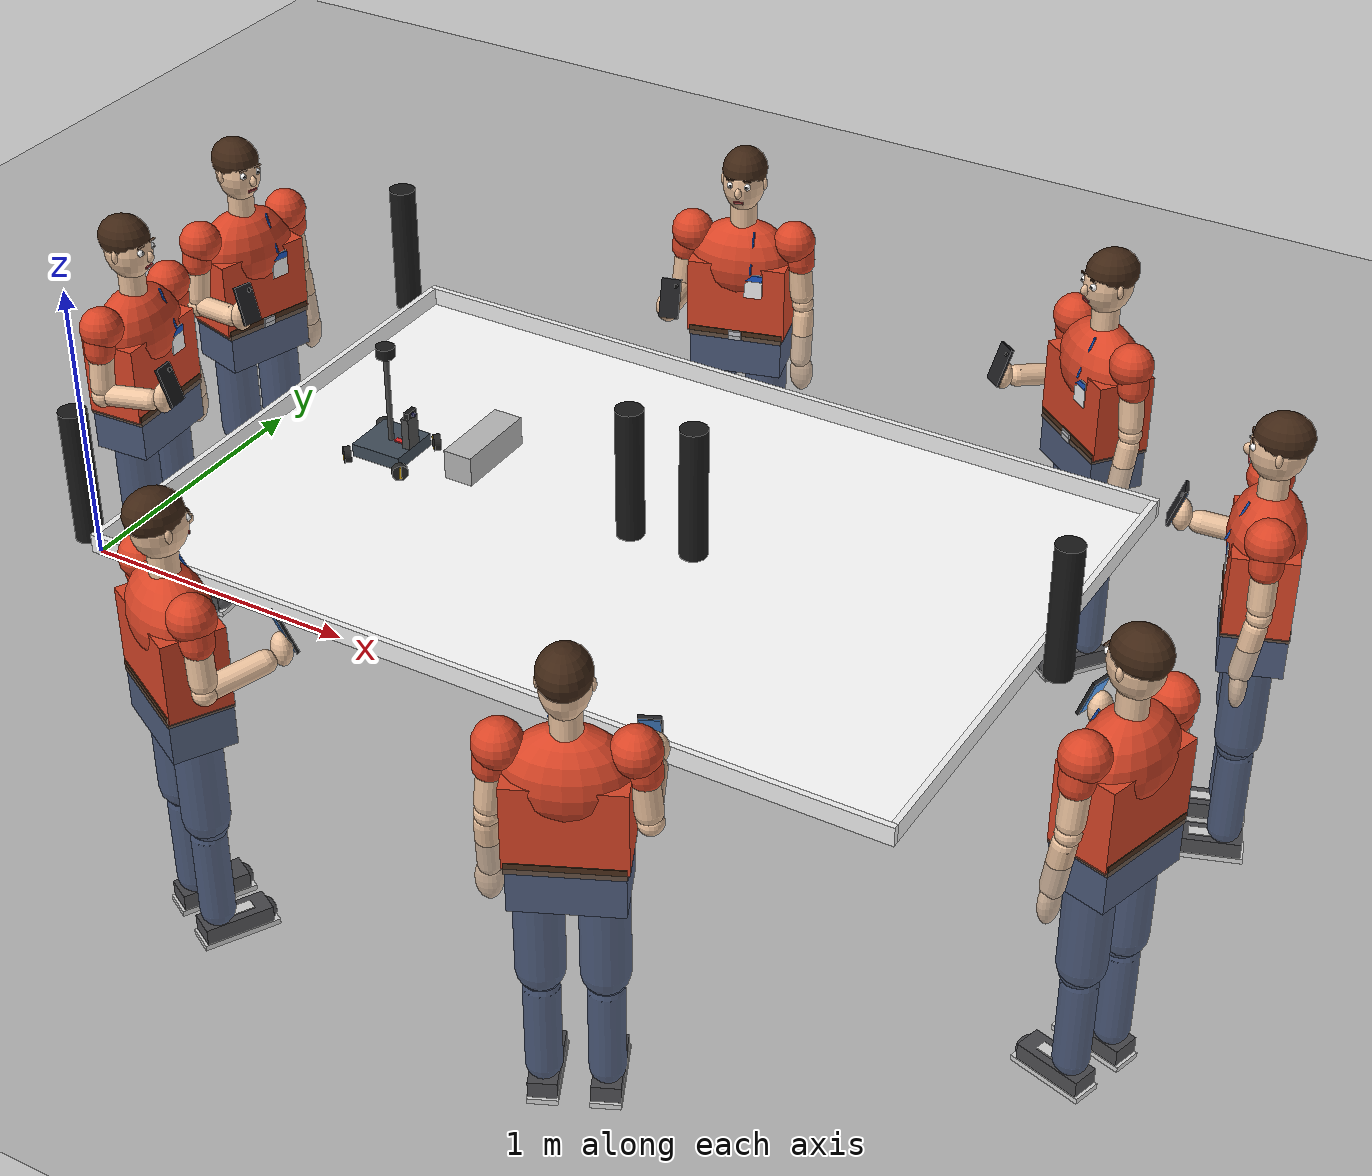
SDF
<?xml version="1.0"?>
<sdf version="1.9">
<world name="arene_omni">
  <physics name="1ms" type="ignored"><max_step_size>0.001</max_step_size><real_time_factor>1.0</real_time_factor></physics>
  <plugin filename="gz-sim-physics-system" name="gz::sim::systems::Physics"/>
  <plugin filename="gz-sim-user-commands-system" name="gz::sim::systems::UserCommands"/>
  <plugin filename="gz-sim-scene-broadcaster-system" name="gz::sim::systems::SceneBroadcaster"/>
  <plugin filename="gz-sim-sensors-system" name="gz::sim::systems::Sensors"><render_engine>ogre2</render_engine></plugin>
  <plugin filename="gz-sim-imu-system" name="gz::sim::systems::Imu"/>

  <gravity>0 0 -9.81</gravity>

  <scene><ambient>0.6 0.6 0.6 1</ambient><background>0.8 0.85 0.9 1</background><grid>false</grid></scene>
  <light type="directional" name="soleil"><cast_shadows>true</cast_shadows><pose>1.5 1 10 0 0 0</pose><diffuse>0.9 0.9 0.9 1</diffuse><specular>0.2 0.2 0.2 1</specular><direction>-0.3 0.2 -1</direction></light>

  <model name="sol"><static>true</static><link name="link"><collision name="c"><geometry><plane><normal>0 0 1</normal><size>20 20</size></plane></geometry><surface><friction><ode><mu>1.0</mu><mu2>1.0</mu2></ode></friction></surface></collision><visual name="v"><geometry><plane><normal>0 0 1</normal><size>20 20</size></plane></geometry><material><ambient>0.55 0.55 0.55 1</ambient><diffuse>0.55 0.55 0.55 1</diffuse><specular>0.1 0.1 0.1 1</specular></material></visual></link></model>
  <model name="table"><static>true</static><pose>1.5 1 0.0005 0 0 0</pose><link name="link"><visual name="v"><geometry><plane><normal>0 0 1</normal><size>3 2</size></plane></geometry><material><ambient>1 1 1 1</ambient><diffuse>1 1 1 1</diffuse><specular>0.05 0.05 0.05 1</specular><pbr><metal><albedo_map>tapis_2027.png</albedo_map><metalness>0</metalness><roughness>0.9</roughness></metal></pbr></material></visual></link></model>

  <model name="murs"><static>true</static><link name="link">
    <collision name="sud_c"><pose>1.5 -0.011 0.035 0 0 0</pose><geometry><box><size>3.044 0.022 0.07</size></box></geometry></collision>
    <visual name="sud_v"><pose>1.5 -0.011 0.035 0 0 0</pose><geometry><box><size>3.044 0.022 0.07</size></box></geometry><material><ambient>0.95 0.95 0.95 1</ambient><diffuse>0.95 0.95 0.95 1</diffuse><specular>0.1 0.1 0.1 1</specular></material></visual>
    <collision name="nord_c"><pose>1.5 2.011 0.035 0 0 0</pose><geometry><box><size>3.044 0.022 0.07</size></box></geometry></collision>
    <visual name="nord_v"><pose>1.5 2.011 0.035 0 0 0</pose><geometry><box><size>3.044 0.022 0.07</size></box></geometry><material><ambient>0.95 0.95 0.95 1</ambient><diffuse>0.95 0.95 0.95 1</diffuse><specular>0.1 0.1 0.1 1</specular></material></visual>
    <collision name="ouest_c"><pose>-0.011 1 0.035 0 0 0</pose><geometry><box><size>0.022 2 0.07</size></box></geometry></collision>
    <visual name="ouest_v"><pose>-0.011 1 0.035 0 0 0</pose><geometry><box><size>0.022 2 0.07</size></box></geometry><material><ambient>0.95 0.95 0.95 1</ambient><diffuse>0.95 0.95 0.95 1</diffuse><specular>0.1 0.1 0.1 1</specular></material></visual>
    <collision name="est_c"><pose>3.011 1 0.035 0 0 0</pose><geometry><box><size>0.022 2 0.07</size></box></geometry></collision>
    <visual name="est_v"><pose>3.011 1 0.035 0 0 0</pose><geometry><box><size>0.022 2 0.07</size></box></geometry><material><ambient>0.95 0.95 0.95 1</ambient><diffuse>0.95 0.95 0.95 1</diffuse><specular>0.1 0.1 0.1 1</specular></material></visual>
  </link></model>

  <model name="balise_1"><static>true</static><pose>-0.094 0.05 0.25 0 0 0</pose><link name="link"><collision name="c"><geometry><cylinder><radius>0.05</radius><length>0.5</length></cylinder></geometry></collision><visual name="v"><geometry><cylinder><radius>0.05</radius><length>0.5</length></cylinder></geometry><material><ambient>0.1 0.1 0.1 1</ambient><diffuse>0.1 0.1 0.1 1</diffuse><specular>0.1 0.1 0.1 1</specular></material></visual></link></model>
  <model name="balise_2"><static>true</static><pose>-0.094 1.95 0.25 0 0 0</pose><link name="link"><collision name="c"><geometry><cylinder><radius>0.05</radius><length>0.5</length></cylinder></geometry></collision><visual name="v"><geometry><cylinder><radius>0.05</radius><length>0.5</length></cylinder></geometry><material><ambient>0.1 0.1 0.1 1</ambient><diffuse>0.1 0.1 0.1 1</diffuse><specular>0.1 0.1 0.1 1</specular></material></visual></link></model>
  <model name="balise_3"><static>true</static><pose>3.094 1 0.25 0 0 0</pose><link name="link"><collision name="c"><geometry><cylinder><radius>0.05</radius><length>0.5</length></cylinder></geometry></collision><visual name="v"><geometry><cylinder><radius>0.05</radius><length>0.5</length></cylinder></geometry><material><ambient>0.1 0.1 0.1 1</ambient><diffuse>0.1 0.1 0.1 1</diffuse><specular>0.1 0.1 0.1 1</specular></material></visual></link></model>

  <model name="obstacle1"><static>true</static><pose>1.5 1 0.25 0 0 0</pose><link name="link"><collision name="c"><geometry><cylinder><radius>0.05</radius><length>0.5</length></cylinder></geometry></collision><visual name="v"><geometry><cylinder><radius>0.05</radius><length>0.5</length></cylinder></geometry><material><ambient>0.1 0.1 0.1 1</ambient><diffuse>0.1 0.1 0.1 1</diffuse><specular>0.1 0.1 0.1 1</specular></material></visual></link></model>
  <model name="obstacle2"><static>true</static><pose>1.75 1 0.25 0 0 0</pose><link name="link"><collision name="c"><geometry><cylinder><radius>0.05</radius><length>0.5</length></cylinder></geometry></collision><visual name="v"><geometry><cylinder><radius>0.05</radius><length>0.5</length></cylinder></geometry><material><ambient>0.1 0.1 0.1 1</ambient><diffuse>0.1 0.1 0.1 1</diffuse><specular>0.1 0.1 0.1 1</specular></material></visual></link></model>

  <!-- Pierre Eurobot 2027 (carton 320 x 110 x 110 mm, ArUco 13), debout devant le robot -->
  <include><uri>model://pierre_camelot</uri><name>pierre</name><pose>0.9 1 0.16 1.57 0 0</pose></include>

  <include><uri>model://humain</uri><name>humain_1</name><pose>0.7 -0.45 -1.0 0 0 1.066</pose></include>
  <include><uri>model://humain</uri><name>humain_2</name><pose>2.2 -0.5 -1.0 0 0 2.007</pose></include>
  <include><uri>model://humain</uri><name>humain_3</name><pose>1.1 2.5 -1.0 0 0 -1.310</pose></include>
  <include><uri>model://humain</uri><name>humain_4</name><pose>2.6 2.45 -1.0 0 0 -2.219</pose></include>
  <include><uri>model://humain</uri><name>humain_5</name><pose>-0.55 0.9 -1.0 0 0 0.049</pose></include>
  <include><uri>model://humain</uri><name>humain_6</name><pose>-0.6 1.6 -1.0 0 0 -0.278</pose></include>
  <include><uri>model://humain</uri><name>humain_7</name><pose>3.55 0.4 -1.0 0 0 2.857</pose></include>
  <include><uri>model://humain</uri><name>humain_8</name><pose>3.5 1.7 -1.0 0 0 -2.805</pose></include>

  <model name="robot_omni"><pose>0.5 1 0 0 0 0</pose>

    <!-- Repère robot : origine au centre des roues au niveau du sol, x vers l'avant, y vers la gauche. -->
    <link name="chassis"><pose>0 0 0.045 0 0 0</pose><inertial><mass>3</mass><inertia><ixx>0.010625</ixx><ixy>0</ixy><ixz>0</ixz><iyy>0.010625</iyy><iyz>0</iyz><izz>0.02</izz></inertia></inertial>
      <collision name="c"><geometry><box><size>0.2 0.2 0.05</size></box></geometry></collision><visual name="v"><geometry><box><size>0.2 0.2 0.05</size></box></geometry><material><ambient>0.25 0.3 0.35 1</ambient><diffuse>0.25 0.3 0.35 1</diffuse><specular>0.1 0.1 0.1 1</specular></material></visual>
      <visual name="avant"><pose>0.04 0 0.028 0 0 0</pose><geometry><box><size>0.04 0.02 0.006</size></box></geometry><material><ambient>0.9 0.15 0.15 1</ambient><diffuse>0.9 0.15 0.15 1</diffuse><specular>0.1 0.1 0.1 1</specular></material></visual>
      <visual name="mat"><pose>0 0 0.205 0 0 0</pose><geometry><cylinder><radius>0.01</radius><length>0.36</length></cylinder></geometry><material><ambient>0.3 0.3 0.3 1</ambient><diffuse>0.3 0.3 0.3 1</diffuse><specular>0.1 0.1 0.1 1</specular></material></visual>
      <visual name="lidar_v"><pose>0 0 0.385 0 0 0</pose><geometry><cylinder><radius>0.035</radius><length>0.04</length></cylinder></geometry><material><ambient>0.1 0.1 0.1 1</ambient><diffuse>0.1 0.1 0.1 1</diffuse><specular>0.1 0.1 0.1 1</specular></material></visual>
      <sensor name="lidar" type="gpu_lidar"><pose>0 0 0.385 0 0 0</pose><topic>scan</topic><gz_frame_id>lidar</gz_frame_id><update_rate>10</update_rate><always_on>true</always_on><visualize>true</visualize><lidar><scan><horizontal><samples>720</samples><resolution>1</resolution><min_angle>-3.14159</min_angle><max_angle>3.14159</max_angle></horizontal><vertical><samples>1</samples><resolution>1</resolution><min_angle>0</min_angle><max_angle>0</max_angle></vertical></scan><range><min>0.08</min><max>8.0</max><resolution>0.01</resolution></range><noise><type>gaussian</type><mean>0</mean><stddev>0.01</stddev></noise></lidar></sensor>
      <sensor name="imu" type="imu"><topic>imu</topic><gz_frame_id>imu</gz_frame_id><update_rate>200</update_rate><always_on>true</always_on><imu><linear_acceleration><x><noise type="gaussian"><mean>0</mean><stddev>0.02</stddev><bias_mean>0.05</bias_mean><bias_stddev>0.01</bias_stddev></noise></x><y><noise type="gaussian"><mean>0</mean><stddev>0.02</stddev><bias_mean>0.05</bias_mean><bias_stddev>0.01</bias_stddev></noise></y><z><noise type="gaussian"><mean>0</mean><stddev>0.02</stddev><bias_mean>0.05</bias_mean><bias_stddev>0.01</bias_stddev></noise></z></linear_acceleration></imu></sensor>

      <!-- Socle caméra : petite plaque verticale à l'avant (x = 0.07 -> 0.10, sommet à 17 cm du sol) -->
      <collision name="socle_cam_c"><pose>0.085 0 0.085 0 0 0</pose><geometry><box><size>0.03 0.06 0.12</size></box></geometry></collision>
      <visual name="socle_cam_v"><pose>0.085 0 0.085 0 0 0</pose><geometry><box><size>0.03 0.06 0.12</size></box></geometry><material><ambient>0.3 0.3 0.3 1</ambient><diffuse>0.3 0.3 0.3 1</diffuse><specular>0.1 0.1 0.1 1</specular></material></visual>

      <!-- Boîtier caméra posé sur le socle -->
      <visual name="cam_boitier"><pose>0.09 0 0.1575 0 0 0</pose><geometry><box><size>0.02 0.05 0.025</size></box></geometry><material><ambient>0.1 0.1 0.1 1</ambient><diffuse>0.1 0.1 0.1 1</diffuse><specular>0.2 0.2 0.2 1</specular></material></visual>
      <visual name="cam_objectif"><pose>0.105 0 0.1575 0 1.5708 0</pose><geometry><cylinder><radius>0.008</radius><length>0.01</length></cylinder></geometry><material><ambient>0.05 0.05 0.2 1</ambient><diffuse>0.05 0.05 0.2 1</diffuse><specular>0.5 0.5 0.5 1</specular></material></visual>

      <sensor name="camera" type="camera"><pose>0.11 0 0.1575 0 0.2 0</pose><topic>camera/image</topic><gz_frame_id>camera_optical</gz_frame_id><update_rate>30</update_rate><always_on>true</always_on><visualize>true</visualize>
        <camera><horizontal_fov>1.047</horizontal_fov><image><width>640</width><height>480</height><format>R8G8B8</format></image><clip><near>0.02</near><far>10</far></clip><noise><type>gaussian</type><mean>0</mean><stddev>0.007</stddev></noise></camera>
      </sensor>
    </link>

    <!-- Roue 1 (avant gauche), alpha = 45 deg -->
    <link name="roue_1"><pose>0.115 0.115 0.03 0 1.5708 0.785398</pose><inertial><mass>0.1</mass><inertia><ixx>2.77083e-05</ixx><ixy>0</ixy><ixz>0</ixz><iyy>2.77083e-05</iyy><iyz>0</iyz><izz>4.5e-05</izz></inertia></inertial>
      <collision name="c"><geometry><cylinder><radius>0.03</radius><length>0.025</length></cylinder></geometry><surface><friction><ode><mu>0.0</mu><mu2>1.0</mu2><fdir1>0 0 1</fdir1><slip1>0</slip1><slip2>0</slip2></ode></friction></surface></collision>
      <visual name="v"><geometry><cylinder><radius>0.03</radius><length>0.025</length></cylinder></geometry><material><ambient>0.15 0.15 0.15 1</ambient><diffuse>0.15 0.15 0.15 1</diffuse><specular>0.1 0.1 0.1 1</specular></material></visual>
      <visual name="moyeu"><pose>0 0 0 0 0 0</pose><geometry><box><size>0.048 0.008 0.02625</size></box></geometry><material><ambient>0.95 0.75 0.1 1</ambient><diffuse>0.95 0.75 0.1 1</diffuse><specular>0.1 0.1 0.1 1</specular></material></visual>
    </link>
    <joint name="roue_1_joint" type="revolute"><parent>chassis</parent><child>roue_1</child><axis><xyz expressed_in="__model__">-0.707107 -0.707107 0</xyz><limit><lower>-1e16</lower><upper>1e16</upper></limit><dynamics><damping>0.001</damping></dynamics></axis></joint>

    <!-- Roue 2 (arrière gauche), alpha = 135 deg -->
    <link name="roue_2"><pose>-0.115 0.115 0.03 0 1.5708 2.35619</pose><inertial><mass>0.1</mass><inertia><ixx>2.77083e-05</ixx><ixy>0</ixy><ixz>0</ixz><iyy>2.77083e-05</iyy><iyz>0</iyz><izz>4.5e-05</izz></inertia></inertial>
      <collision name="c"><geometry><cylinder><radius>0.03</radius><length>0.025</length></cylinder></geometry><surface><friction><ode><mu>0.0</mu><mu2>1.0</mu2><fdir1>0 0 1</fdir1><slip1>0</slip1><slip2>0</slip2></ode></friction></surface></collision>
      <visual name="v"><geometry><cylinder><radius>0.03</radius><length>0.025</length></cylinder></geometry><material><ambient>0.15 0.15 0.15 1</ambient><diffuse>0.15 0.15 0.15 1</diffuse><specular>0.1 0.1 0.1 1</specular></material></visual>
      <visual name="moyeu"><pose>0 0 0 0 0 0</pose><geometry><box><size>0.048 0.008 0.02625</size></box></geometry><material><ambient>0.95 0.75 0.1 1</ambient><diffuse>0.95 0.75 0.1 1</diffuse><specular>0.1 0.1 0.1 1</specular></material></visual>
    </link>
    <joint name="roue_2_joint" type="revolute"><parent>chassis</parent><child>roue_2</child><axis><xyz expressed_in="__model__">0.707107 -0.707107 0</xyz><limit><lower>-1e16</lower><upper>1e16</upper></limit><dynamics><damping>0.001</damping></dynamics></axis></joint>

    <!-- Roue 3 (arrière droite), alpha = 225 deg -->
    <link name="roue_3"><pose>-0.115 -0.115 0.03 0 1.5708 3.92699</pose><inertial><mass>0.1</mass><inertia><ixx>2.77083e-05</ixx><ixy>0</ixy><ixz>0</ixz><iyy>2.77083e-05</iyy><iyz>0</iyz><izz>4.5e-05</izz></inertia></inertial>
      <collision name="c"><geometry><cylinder><radius>0.03</radius><length>0.025</length></cylinder></geometry><surface><friction><ode><mu>0.0</mu><mu2>1.0</mu2><fdir1>0 0 1</fdir1><slip1>0</slip1><slip2>0</slip2></ode></friction></surface></collision>
      <visual name="v"><geometry><cylinder><radius>0.03</radius><length>0.025</length></cylinder></geometry><material><ambient>0.15 0.15 0.15 1</ambient><diffuse>0.15 0.15 0.15 1</diffuse><specular>0.1 0.1 0.1 1</specular></material></visual>
      <visual name="moyeu"><pose>0 0 0 0 0 0</pose><geometry><box><size>0.048 0.008 0.02625</size></box></geometry><material><ambient>0.95 0.75 0.1 1</ambient><diffuse>0.95 0.75 0.1 1</diffuse><specular>0.1 0.1 0.1 1</specular></material></visual>
    </link>
    <joint name="roue_3_joint" type="revolute"><parent>chassis</parent><child>roue_3</child><axis><xyz expressed_in="__model__">0.707107 0.707107 0</xyz><limit><lower>-1e16</lower><upper>1e16</upper></limit><dynamics><damping>0.001</damping></dynamics></axis></joint>

    <!-- Roue 4 (avant droite), alpha = 315 deg -->
    <link name="roue_4"><pose>0.115 -0.115 0.03 0 1.5708 5.49779</pose><inertial><mass>0.1</mass><inertia><ixx>2.77083e-05</ixx><ixy>0</ixy><ixz>0</ixz><iyy>2.77083e-05</iyy><iyz>0</iyz><izz>4.5e-05</izz></inertia></inertial>
      <collision name="c"><geometry><cylinder><radius>0.03</radius><length>0.025</length></cylinder></geometry><surface><friction><ode><mu>0.0</mu><mu2>1.0</mu2><fdir1>0 0 1</fdir1><slip1>0</slip1><slip2>0</slip2></ode></friction></surface></collision>
      <visual name="v"><geometry><cylinder><radius>0.03</radius><length>0.025</length></cylinder></geometry><material><ambient>0.15 0.15 0.15 1</ambient><diffuse>0.15 0.15 0.15 1</diffuse><specular>0.1 0.1 0.1 1</specular></material></visual>
      <visual name="moyeu"><pose>0 0 0 0 0 0</pose><geometry><box><size>0.048 0.008 0.02625</size></box></geometry><material><ambient>0.95 0.75 0.1 1</ambient><diffuse>0.95 0.75 0.1 1</diffuse><specular>0.1 0.1 0.1 1</specular></material></visual>
    </link>
    <joint name="roue_4_joint" type="revolute"><parent>chassis</parent><child>roue_4</child><axis><xyz expressed_in="__model__">-0.707107 0.707107 0</xyz><limit><lower>-1e16</lower><upper>1e16</upper></limit><dynamics><damping>0.001</damping></dynamics></axis></joint>

    <plugin filename="gz-sim-joint-controller-system" name="gz::sim::systems::JointController"><joint_name>roue_1_joint</joint_name><topic>/robot_omni/roue_1/cmd_vel</topic></plugin>
    <plugin filename="gz-sim-joint-controller-system" name="gz::sim::systems::JointController"><joint_name>roue_2_joint</joint_name><topic>/robot_omni/roue_2/cmd_vel</topic></plugin>
    <plugin filename="gz-sim-joint-controller-system" name="gz::sim::systems::JointController"><joint_name>roue_3_joint</joint_name><topic>/robot_omni/roue_3/cmd_vel</topic></plugin>
    <plugin filename="gz-sim-joint-controller-system" name="gz::sim::systems::JointController"><joint_name>roue_4_joint</joint_name><topic>/robot_omni/roue_4/cmd_vel</topic></plugin>
    <plugin filename="gz-sim-joint-state-publisher-system" name="gz::sim::systems::JointStatePublisher"><topic>/robot_omni/joint_states</topic></plugin>
    <plugin filename="gz-sim-odometry-publisher-system" name="gz::sim::systems::OdometryPublisher"><odom_frame>map</odom_frame><robot_base_frame>base_link</robot_base_frame><odom_topic>/robot_omni/pose_vraie</odom_topic><tf_topic>/robot_omni/tf</tf_topic><dimensions>2</dimensions><odom_publish_frequency>50</odom_publish_frequency></plugin>

  </model>
</world>
</sdf>

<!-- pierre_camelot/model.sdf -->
<sdf version="1.9">
  <model name="pierre_camelot">
    <!-- Pierre Eurobot 2027 : boîte carton 110 x 110 x 320 mm, grand axe selon z (debout),
         ArUco 4x4_50 ID 13 de 80 mm centré sur les 4 grandes faces. -->
    <link name="link">
      <inertial><mass>0.09</mass><inertia><ixx>8.5875e-04</ixx><ixy>0</ixy><ixz>0</ixz><iyy>8.5875e-04</iyy><iyz>0</iyz><izz>1.8150e-04</izz></inertia></inertial>
      <collision name="c"><geometry><box><size>0.11 0.11 0.32</size></box></geometry><surface><friction><ode><mu>0.6</mu><mu2>0.6</mu2></ode></friction></surface></collision>
      <visual name="v"><geometry><mesh><uri>model://pierre_camelot/meshes/pierre_camelot.obj</uri></mesh></geometry></visual>
    </link>
  </model>
</sdf>

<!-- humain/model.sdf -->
<sdf version="1.9">
<model name="humain">
  <static>true</static>
  <!-- Spectateur Eurobot qui filme le match. Repere : origine au sol entre les pieds, x vers l'avant. Taille ~1.72 m. -->
  <link name="link">
    <!-- Collisions simplifiees : le lidar (z = 0.385 m) voit deux jambes -->
    <collision name="jambe_g_c"><pose>0 0.1 0.45 0 0 0</pose><geometry><capsule><radius>0.07</radius><length>0.72</length></capsule></geometry></collision>
    <collision name="jambe_d_c"><pose>0 -0.1 0.45 0 0 0</pose><geometry><capsule><radius>0.07</radius><length>0.72</length></capsule></geometry></collision>
    <collision name="torse_c"><pose>0 0 1.15 0 0 0</pose><geometry><box><size>0.26 0.44 0.6</size></box></geometry></collision>
    <collision name="tete_c"><pose>0 0 1.6 0 0 0</pose><geometry><sphere><radius>0.12</radius></sphere></geometry></collision>

    <!-- Jambe gauche -->
    <visual name="semelle_g"><pose>0.06 0.1 0.01 0 0 0</pose><geometry><box><size>0.27 0.1 0.02</size></box></geometry><material><ambient>0.95 0.95 0.95 1</ambient><diffuse>0.95 0.95 0.95 1</diffuse><specular>0.1 0.1 0.1 1</specular></material></visual>
    <visual name="chaussure_g"><pose>0.055 0.1 0.05 0 0 0</pose><geometry><box><size>0.24 0.095 0.06</size></box></geometry><material><ambient>0.18 0.18 0.2 1</ambient><diffuse>0.18 0.18 0.2 1</diffuse><specular>0.1 0.1 0.1 1</specular></material></visual>
    <visual name="bout_g"><pose>0.17 0.1 0.045 0 0 0</pose><geometry><ellipsoid><radii>0.03 0.0475 0.035</radii></ellipsoid></geometry><material><ambient>0.18 0.18 0.2 1</ambient><diffuse>0.18 0.18 0.2 1</diffuse><specular>0.1 0.1 0.1 1</specular></material></visual>
    <visual name="lacets_g"><pose>0.08 0.1 0.082 0 0 0</pose><geometry><box><size>0.08 0.04 0.005</size></box></geometry><material><ambient>0.95 0.95 0.95 1</ambient><diffuse>0.95 0.95 0.95 1</diffuse><specular>0.1 0.1 0.1 1</specular></material></visual>
    <visual name="mollet_g"><pose>0 0.1 0.28 0 0 0</pose><geometry><capsule><radius>0.06</radius><length>0.32</length></capsule></geometry><material><ambient>0.16 0.24 0.42 1</ambient><diffuse>0.16 0.24 0.42 1</diffuse><specular>0.1 0.1 0.1 1</specular></material></visual>
    <visual name="genou_g"><pose>0.005 0.1 0.49 0 0 0</pose><geometry><sphere><radius>0.068</radius></sphere></geometry><material><ambient>0.16 0.24 0.42 1</ambient><diffuse>0.16 0.24 0.42 1</diffuse><specular>0.1 0.1 0.1 1</specular></material></visual>
    <visual name="cuisse_g"><pose>0 0.1 0.68 0 0 0</pose><geometry><capsule><radius>0.08</radius><length>0.32</length></capsule></geometry><material><ambient>0.16 0.24 0.42 1</ambient><diffuse>0.16 0.24 0.42 1</diffuse><specular>0.1 0.1 0.1 1</specular></material></visual>

    <!-- Jambe droite -->
    <visual name="semelle_d"><pose>0.06 -0.1 0.01 0 0 0</pose><geometry><box><size>0.27 0.1 0.02</size></box></geometry><material><ambient>0.95 0.95 0.95 1</ambient><diffuse>0.95 0.95 0.95 1</diffuse><specular>0.1 0.1 0.1 1</specular></material></visual>
    <visual name="chaussure_d"><pose>0.055 -0.1 0.05 0 0 0</pose><geometry><box><size>0.24 0.095 0.06</size></box></geometry><material><ambient>0.18 0.18 0.2 1</ambient><diffuse>0.18 0.18 0.2 1</diffuse><specular>0.1 0.1 0.1 1</specular></material></visual>
    <visual name="bout_d"><pose>0.17 -0.1 0.045 0 0 0</pose><geometry><ellipsoid><radii>0.03 0.0475 0.035</radii></ellipsoid></geometry><material><ambient>0.18 0.18 0.2 1</ambient><diffuse>0.18 0.18 0.2 1</diffuse><specular>0.1 0.1 0.1 1</specular></material></visual>
    <visual name="lacets_d"><pose>0.08 -0.1 0.082 0 0 0</pose><geometry><box><size>0.08 0.04 0.005</size></box></geometry><material><ambient>0.95 0.95 0.95 1</ambient><diffuse>0.95 0.95 0.95 1</diffuse><specular>0.1 0.1 0.1 1</specular></material></visual>
    <visual name="mollet_d"><pose>0 -0.1 0.28 0 0 0</pose><geometry><capsule><radius>0.06</radius><length>0.32</length></capsule></geometry><material><ambient>0.16 0.24 0.42 1</ambient><diffuse>0.16 0.24 0.42 1</diffuse><specular>0.1 0.1 0.1 1</specular></material></visual>
    <visual name="genou_d"><pose>0.005 -0.1 0.49 0 0 0</pose><geometry><sphere><radius>0.068</radius></sphere></geometry><material><ambient>0.16 0.24 0.42 1</ambient><diffuse>0.16 0.24 0.42 1</diffuse><specular>0.1 0.1 0.1 1</specular></material></visual>
    <visual name="cuisse_d"><pose>0 -0.1 0.68 0 0 0</pose><geometry><capsule><radius>0.08</radius><length>0.32</length></capsule></geometry><material><ambient>0.16 0.24 0.42 1</ambient><diffuse>0.16 0.24 0.42 1</diffuse><specular>0.1 0.1 0.1 1</specular></material></visual>

    <!-- Bassin et ceinture -->
    <visual name="bassin"><pose>0 0 0.91 0 0 0</pose><geometry><box><size>0.22 0.36 0.16</size></box></geometry><material><ambient>0.16 0.24 0.42 1</ambient><diffuse>0.16 0.24 0.42 1</diffuse><specular>0.1 0.1 0.1 1</specular></material></visual>
    <visual name="ceinture"><pose>0 0 0.995 0 0 0</pose><geometry><box><size>0.226 0.366 0.04</size></box></geometry><material><ambient>0.3 0.18 0.1 1</ambient><diffuse>0.3 0.18 0.1 1</diffuse><specular>0.1 0.1 0.1 1</specular></material></visual>
    <visual name="boucle"><pose>0.115 0 0.995 0 0 0</pose><geometry><box><size>0.008 0.05 0.035</size></box></geometry><material><ambient>0.8 0.8 0.82 1</ambient><diffuse>0.8 0.8 0.82 1</diffuse><specular>0.1 0.1 0.1 1</specular></material></visual>

    <!-- Torse (t-shirt) -->
    <visual name="ventre"><pose>0 0 1.14 0 0 0</pose><geometry><box><size>0.22 0.38 0.3</size></box></geometry><material><ambient>0.85 0.27 0.15 1</ambient><diffuse>0.85 0.27 0.15 1</diffuse><specular>0.1 0.1 0.1 1</specular></material></visual>
    <visual name="poitrine"><pose>0 0 1.27 0 0 0</pose><geometry><ellipsoid><radii>0.13 0.2 0.17</radii></ellipsoid></geometry><material><ambient>0.85 0.27 0.15 1</ambient><diffuse>0.85 0.27 0.15 1</diffuse><specular>0.1 0.1 0.1 1</specular></material></visual>
    <visual name="epaule_g"><pose>0 0.2 1.37 0 0 0</pose><geometry><sphere><radius>0.08</radius></sphere></geometry><material><ambient>0.85 0.27 0.15 1</ambient><diffuse>0.85 0.27 0.15 1</diffuse><specular>0.1 0.1 0.1 1</specular></material></visual>
    <visual name="manche_g"><pose>0 0.222 1.32 0.1 0 0</pose><geometry><capsule><radius>0.056</radius><length>0.06</length></capsule></geometry><material><ambient>0.85 0.27 0.15 1</ambient><diffuse>0.85 0.27 0.15 1</diffuse><specular>0.1 0.1 0.1 1</specular></material></visual>
    <visual name="epaule_d"><pose>0 -0.2 1.37 0 0 0</pose><geometry><sphere><radius>0.08</radius></sphere></geometry><material><ambient>0.85 0.27 0.15 1</ambient><diffuse>0.85 0.27 0.15 1</diffuse><specular>0.1 0.1 0.1 1</specular></material></visual>
    <visual name="manche_d"><pose>0 -0.222 1.32 -0.1 0 0</pose><geometry><capsule><radius>0.056</radius><length>0.06</length></capsule></geometry><material><ambient>0.85 0.27 0.15 1</ambient><diffuse>0.85 0.27 0.15 1</diffuse><specular>0.1 0.1 0.1 1</specular></material></visual>

    <!-- Badge Eurobot -->
    <visual name="cordon"><pose>0.1 0.06 1.35 0 -0.375 0</pose><geometry><cylinder><radius>0.004</radius><length>0.16</length></cylinder></geometry><material><ambient>0.1 0.35 0.8 1</ambient><diffuse>0.1 0.35 0.8 1</diffuse><specular>0.1 0.1 0.1 1</specular></material></visual>
    <visual name="badge"><pose>0.119 0.07 1.22 0 0 0</pose><geometry><box><size>0.004 0.07 0.1</size></box></geometry><material><ambient>0.97 0.97 0.97 1</ambient><diffuse>0.97 0.97 0.97 1</diffuse><specular>0.1 0.1 0.1 1</specular></material></visual>
    <visual name="badge_bande"><pose>0.1215 0.07 1.255 0 0 0</pose><geometry><box><size>0.002 0.07 0.025</size></box></geometry><material><ambient>0.1 0.35 0.8 1</ambient><diffuse>0.1 0.35 0.8 1</diffuse><specular>0.1 0.1 0.1 1</specular></material></visual>

    <!-- Bras gauche (le long du corps) -->
    <visual name="bras_g"><pose>0 0.225 1.25 0.1 0 0</pose><geometry><capsule><radius>0.045</radius><length>0.2</length></capsule></geometry><material><ambient>0.92 0.76 0.62 1</ambient><diffuse>0.92 0.76 0.62 1</diffuse><specular>0.1 0.1 0.1 1</specular></material></visual>
    <visual name="coude_g"><pose>0 0.24 1.11 0 0 0</pose><geometry><sphere><radius>0.042</radius></sphere></geometry><material><ambient>0.92 0.76 0.62 1</ambient><diffuse>0.92 0.76 0.62 1</diffuse><specular>0.1 0.1 0.1 1</specular></material></visual>
    <visual name="avant_bras_g"><pose>0.02 0.245 0.98 0 -0.15 0</pose><geometry><capsule><radius>0.04</radius><length>0.18</length></capsule></geometry><material><ambient>0.92 0.76 0.62 1</ambient><diffuse>0.92 0.76 0.62 1</diffuse><specular>0.1 0.1 0.1 1</specular></material></visual>
    <visual name="main_g"><pose>0.035 0.25 0.83 0 0 0</pose><geometry><ellipsoid><radii>0.03 0.045 0.08</radii></ellipsoid></geometry><material><ambient>0.92 0.76 0.62 1</ambient><diffuse>0.92 0.76 0.62 1</diffuse><specular>0.1 0.1 0.1 1</specular></material></visual>

    <!-- Bras droit (filme le match au telephone) -->
    <visual name="bras_d"><pose>0 -0.225 1.25 -0.1 0 0</pose><geometry><capsule><radius>0.045</radius><length>0.2</length></capsule></geometry><material><ambient>0.92 0.76 0.62 1</ambient><diffuse>0.92 0.76 0.62 1</diffuse><specular>0.1 0.1 0.1 1</specular></material></visual>
    <visual name="coude_d"><pose>0 -0.24 1.11 0 0 0</pose><geometry><sphere><radius>0.042</radius></sphere></geometry><material><ambient>0.92 0.76 0.62 1</ambient><diffuse>0.92 0.76 0.62 1</diffuse><specular>0.1 0.1 0.1 1</specular></material></visual>
    <visual name="avant_bras_d"><pose>0.12 -0.23 1.13 0 1.4 0</pose><geometry><capsule><radius>0.04</radius><length>0.18</length></capsule></geometry><material><ambient>0.92 0.76 0.62 1</ambient><diffuse>0.92 0.76 0.62 1</diffuse><specular>0.1 0.1 0.1 1</specular></material></visual>
    <visual name="main_d"><pose>0.27 -0.225 1.17 0 0 0</pose><geometry><ellipsoid><radii>0.035 0.045 0.06</radii></ellipsoid></geometry><material><ambient>0.92 0.76 0.62 1</ambient><diffuse>0.92 0.76 0.62 1</diffuse><specular>0.1 0.1 0.1 1</specular></material></visual>
    <visual name="telephone"><pose>0.29 -0.21 1.22 0 -0.35 0</pose><geometry><box><size>0.012 0.075 0.15</size></box></geometry><material><ambient>0.12 0.12 0.13 1</ambient><diffuse>0.12 0.12 0.13 1</diffuse><specular>0.1 0.1 0.1 1</specular></material></visual>
    <visual name="ecran"><pose>0.2834 -0.21 1.2176 0 -0.35 0</pose><geometry><box><size>0.002 0.065 0.135</size></box></geometry><material><ambient>0.35 0.65 1.0 1</ambient><diffuse>0.35 0.65 1.0 1</diffuse><specular>0.1 0.1 0.1 1</specular><emissive>0.21 0.39 0.60 1</emissive></material></visual>
    <visual name="objectif"><pose>0.2794 -0.19 1.2694 0 1.2208 0</pose><geometry><cylinder><radius>0.008</radius><length>0.004</length></cylinder></geometry><material><ambient>0.02 0.02 0.02 1</ambient><diffuse>0.02 0.02 0.02 1</diffuse><specular>0.1 0.1 0.1 1</specular></material></visual>

    <!-- Cou et tete -->
    <visual name="cou"><pose>0 0 1.46 0 0 0</pose><geometry><cylinder><radius>0.05</radius><length>0.1</length></cylinder></geometry><material><ambient>0.92 0.76 0.62 1</ambient><diffuse>0.92 0.76 0.62 1</diffuse><specular>0.1 0.1 0.1 1</specular></material></visual>
    <visual name="tete"><pose>0 0 1.6 0 0 0</pose><geometry><ellipsoid><radii>0.095 0.08 0.115</radii></ellipsoid></geometry><material><ambient>0.92 0.76 0.62 1</ambient><diffuse>0.92 0.76 0.62 1</diffuse><specular>0.1 0.1 0.1 1</specular></material></visual>
    <visual name="cheveux"><pose>-0.012 0 1.645 0 0 0</pose><geometry><ellipsoid><radii>0.1 0.085 0.085</radii></ellipsoid></geometry><material><ambient>0.25 0.15 0.08 1</ambient><diffuse>0.25 0.15 0.08 1</diffuse><specular>0.1 0.1 0.1 1</specular></material></visual>
    <visual name="oreille_g"><pose>0 0.08 1.6 0 0 0</pose><geometry><ellipsoid><radii>0.012 0.01 0.025</radii></ellipsoid></geometry><material><ambient>0.92 0.76 0.62 1</ambient><diffuse>0.92 0.76 0.62 1</diffuse><specular>0.1 0.1 0.1 1</specular></material></visual>
    <visual name="oeil_g"><pose>0.08 0.032 1.615 0 0 0</pose><geometry><sphere><radius>0.013</radius></sphere></geometry><material><ambient>0.97 0.97 0.97 1</ambient><diffuse>0.97 0.97 0.97 1</diffuse><specular>0.1 0.1 0.1 1</specular></material></visual>
    <visual name="pupille_g"><pose>0.09 0.032 1.615 0 0 0</pose><geometry><sphere><radius>0.006</radius></sphere></geometry><material><ambient>0.1 0.1 0.1 1</ambient><diffuse>0.1 0.1 0.1 1</diffuse><specular>0.1 0.1 0.1 1</specular></material></visual>
    <visual name="sourcil_g"><pose>0.086 0.033 1.64 0 0 0</pose><geometry><box><size>0.006 0.03 0.006</size></box></geometry><material><ambient>0.25 0.15 0.08 1</ambient><diffuse>0.25 0.15 0.08 1</diffuse><specular>0.1 0.1 0.1 1</specular></material></visual>
    <visual name="oreille_d"><pose>0 -0.08 1.6 0 0 0</pose><geometry><ellipsoid><radii>0.012 0.01 0.025</radii></ellipsoid></geometry><material><ambient>0.92 0.76 0.62 1</ambient><diffuse>0.92 0.76 0.62 1</diffuse><specular>0.1 0.1 0.1 1</specular></material></visual>
    <visual name="oeil_d"><pose>0.08 -0.032 1.615 0 0 0</pose><geometry><sphere><radius>0.013</radius></sphere></geometry><material><ambient>0.97 0.97 0.97 1</ambient><diffuse>0.97 0.97 0.97 1</diffuse><specular>0.1 0.1 0.1 1</specular></material></visual>
    <visual name="pupille_d"><pose>0.09 -0.032 1.615 0 0 0</pose><geometry><sphere><radius>0.006</radius></sphere></geometry><material><ambient>0.1 0.1 0.1 1</ambient><diffuse>0.1 0.1 0.1 1</diffuse><specular>0.1 0.1 0.1 1</specular></material></visual>
    <visual name="sourcil_d"><pose>0.086 -0.033 1.64 0 0 0</pose><geometry><box><size>0.006 0.03 0.006</size></box></geometry><material><ambient>0.25 0.15 0.08 1</ambient><diffuse>0.25 0.15 0.08 1</diffuse><specular>0.1 0.1 0.1 1</specular></material></visual>
    <visual name="nez"><pose>0.092 0 1.59 0 0 0</pose><geometry><ellipsoid><radii>0.02 0.013 0.022</radii></ellipsoid></geometry><material><ambient>0.92 0.76 0.62 1</ambient><diffuse>0.92 0.76 0.62 1</diffuse><specular>0.1 0.1 0.1 1</specular></material></visual>
    <visual name="bouche"><pose>0.088 0 1.55 0 0 0</pose><geometry><box><size>0.006 0.04 0.008</size></box></geometry><material><ambient>0.65 0.25 0.25 1</ambient><diffuse>0.65 0.25 0.25 1</diffuse><specular>0.1 0.1 0.1 1</specular></material></visual>
  </link>
</model>
</sdf>
